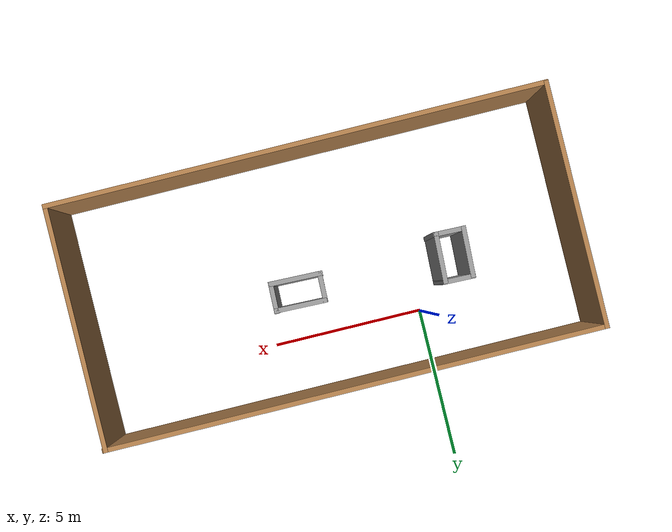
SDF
<?xml version='1.0'?>
<sdf version='1.6'>
  <model name='24_1_29_2'>
    <pose frame=''>2.75495 -2.14965 0 0 -0 0</pose>
    <link name='Wall_0'>
      <collision name='Wall_0_Collision'>
        <geometry>
          <box>
            <size>7.9468 0.15 2.5</size>
          </box>
        </geometry>
        <pose frame=''>0 0 1.25 0 -0 0</pose>
      </collision>
      <visual name='Wall_0_Visual'>
        <pose frame=''>0 0 1.25 0 -0 0</pose>
        <geometry>
          <box>
            <size>7.9468 0.15 2.5</size>
          </box>
        </geometry>
        <material>
          <script>
            <uri>file://media/materials/scripts/gazebo.material</uri>
            <name>Gazebo/Wood</name>
          </script>
          <ambient>1 1 1 1</ambient>
        </material>
        <meta>
          <layer>0</layer>
        </meta>
      </visual>
      <pose frame=''>-8.0353 -0.006836 0 0 -0 -1.56739</pose>
    </link>
    <link name='Wall_1'>
      <collision name='Wall_1_Collision'>
        <geometry>
          <box>
            <size>16.2206 0.15 2.5</size>
          </box>
        </geometry>
        <pose frame=''>0 0 1.25 0 -0 0</pose>
      </collision>
      <visual name='Wall_1_Visual'>
        <pose frame=''>0 0 1.25 0 -0 0</pose>
        <geometry>
          <box>
            <size>16.2206 0.15 2.5</size>
          </box>
        </geometry>
        <material>
          <script>
            <uri>file://media/materials/scripts/gazebo.material</uri>
            <name>Gazebo/Wood</name>
          </script>
          <ambient>1 1 1 1</ambient>
        </material>
        <meta>
          <layer>0</layer>
        </meta>
      </visual>
      <pose frame=''>0.0133 -3.91172 0 0 -0 0.002503</pose>
    </link>
    <link name='Wall_10'>
      <collision name='Wall_10_Collision'>
        <geometry>
          <box>
            <size>1.00024 0.15 2.5</size>
          </box>
        </geometry>
        <pose frame=''>0 0 1.25 0 -0 0</pose>
      </collision>
      <visual name='Wall_10_Visual'>
        <pose frame=''>0 0 1.25 0 -0 0</pose>
        <geometry>
          <box>
            <size>1.00024 0.15 2.5</size>
          </box>
        </geometry>
        <material>
          <script>
            <uri>file://media/materials/scripts/gazebo.material</uri>
            <name>Gazebo/Grey</name>
          </script>
          <ambient>1 1 1 1</ambient>
        </material>
        <meta>
          <layer>0</layer>
        </meta>
      </visual>
      <pose frame=''>0.254084 0.59681 0 0 -0 -1.59445</pose>
    </link>
    <link name='Wall_11'>
      <collision name='Wall_11_Collision'>
        <geometry>
          <box>
            <size>1.72756 0.15 2.5</size>
          </box>
        </geometry>
        <pose frame=''>0 0 1.25 0 -0 0</pose>
      </collision>
      <visual name='Wall_11_Visual'>
        <pose frame=''>0 0 1.25 0 -0 0</pose>
        <geometry>
          <box>
            <size>1.72756 0.15 2.5</size>
          </box>
        </geometry>
        <material>
          <script>
            <uri>file://media/materials/scripts/gazebo.material</uri>
            <name>Gazebo/Grey</name>
          </script>
          <ambient>1 1 1 1</ambient>
        </material>
        <meta>
          <layer>0</layer>
        </meta>
      </visual>
      <pose frame=''>1.01244 0.151696 0 0 -0 -0.025502</pose>
    </link>
    <link name='Wall_12'>
      <collision name='Wall_12_Collision'>
        <geometry>
          <box>
            <size>1.00024 0.15 2.5</size>
          </box>
        </geometry>
        <pose frame=''>0 0 1.25 0 -0 0</pose>
      </collision>
      <visual name='Wall_12_Visual'>
        <pose frame=''>0 0 1.25 0 -0 0</pose>
        <geometry>
          <box>
            <size>1.00024 0.15 2.5</size>
          </box>
        </geometry>
        <material>
          <script>
            <uri>file://media/materials/scripts/gazebo.material</uri>
            <name>Gazebo/Grey</name>
          </script>
          <ambient>1 1 1 1</ambient>
        </material>
        <meta>
          <layer>0</layer>
        </meta>
      </visual>
      <pose frame=''>1.81102 0.576696 0 0 -0 1.54714</pose>
    </link>
    <link name='Wall_13'>
      <collision name='Wall_13_Collision'>
        <geometry>
          <box>
            <size>1.68735 0.15 2.5</size>
          </box>
        </geometry>
        <pose frame=''>0 0 1.25 0 -0 0</pose>
      </collision>
      <visual name='Wall_13_Visual'>
        <pose frame=''>0 0 1.25 0 -0 0</pose>
        <geometry>
          <box>
            <size>1.68735 0.15 2.5</size>
          </box>
        </geometry>
        <material>
          <script>
            <uri>file://media/materials/scripts/gazebo.material</uri>
            <name>Gazebo/Grey</name>
          </script>
          <ambient>1 1 1 1</ambient>
        </material>
        <meta>
          <layer>0</layer>
        </meta>
      </visual>
      <pose frame=''>1.05266 1.0017 0 0 -0 3.11542</pose>
    </link>
    <link name='Wall_2'>
      <collision name='Wall_2_Collision'>
        <geometry>
          <box>
            <size>7.95329 0.15 2.5</size>
          </box>
        </geometry>
        <pose frame=''>0 0 1.25 0 -0 0</pose>
      </collision>
      <visual name='Wall_2_Visual'>
        <pose frame=''>0 0 1.25 0 -0 0</pose>
        <geometry>
          <box>
            <size>7.95329 0.15 2.5</size>
          </box>
        </geometry>
        <material>
          <script>
            <uri>file://media/materials/scripts/gazebo.material</uri>
            <name>Gazebo/Wood</name>
          </script>
          <ambient>1 1 1 1</ambient>
        </material>
        <meta>
          <layer>0</layer>
        </meta>
      </visual>
      <pose frame=''>8.0353 0.030148 0 0 -0 1.57421</pose>
    </link>
    <link name='Wall_3'>
      <collision name='Wall_3_Collision'>
        <geometry>
          <box>
            <size>16.2206 0.15 2.5</size>
          </box>
        </geometry>
        <pose frame=''>0 0 1.25 0 -0 0</pose>
      </collision>
      <visual name='Wall_3_Visual'>
        <pose frame=''>0 0 1.25 0 -0 0</pose>
        <geometry>
          <box>
            <size>16.2206 0.15 2.5</size>
          </box>
        </geometry>
        <material>
          <script>
            <uri>file://media/materials/scripts/gazebo.material</uri>
            <name>Gazebo/Wood</name>
          </script>
          <ambient>1 1 1 1</ambient>
        </material>
        <meta>
          <layer>0</layer>
        </meta>
      </visual>
      <pose frame=''>0.0133 3.91168 0 0 -0 -3.13909</pose>
    </link>
    <link name='Wall_5'>
      <collision name='Wall_5_Collision'>
        <geometry>
          <box>
            <size>1.64202 0.15 2.5</size>
          </box>
        </geometry>
        <pose frame=''>0 0 1.25 0 -0 0</pose>
      </collision>
      <visual name='Wall_5_Visual'>
        <pose frame=''>0 0 1.25 0 -0 0</pose>
        <geometry>
          <box>
            <size>1.64202 0.15 2.5</size>
          </box>
        </geometry>
        <material>
          <script>
            <uri>file://media/materials/scripts/gazebo.material</uri>
            <name>Gazebo/Grey</name>
          </script>
          <ambient>1 1 1 1</ambient>
        </material>
        <meta>
          <layer>0</layer>
        </meta>
      </visual>
      <pose frame=''>-4.41226 0.618343 0 0 -0 -1.61125</pose>
    </link>
    <link name='Wall_6'>
      <collision name='Wall_6_Collision'>
        <geometry>
          <box>
            <size>1.02898 0.15 2.5</size>
          </box>
        </geometry>
        <pose frame=''>0 0 1.25 0 -0 0</pose>
      </collision>
      <visual name='Wall_6_Visual'>
        <pose frame=''>0 0 1.25 0 -0 0</pose>
        <geometry>
          <box>
            <size>1.02898 0.15 2.5</size>
          </box>
        </geometry>
        <material>
          <script>
            <uri>file://media/materials/scripts/gazebo.material</uri>
            <name>Gazebo/Grey</name>
          </script>
          <ambient>1 1 1 1</ambient>
        </material>
        <meta>
          <layer>0</layer>
        </meta>
      </visual>
      <pose frame=''>-3.98295 -0.137111 0 0 -0 -0.022885</pose>
    </link>
    <link name='Wall_7'>
      <collision name='Wall_7_Collision'>
        <geometry>
          <box>
            <size>1.64202 0.15 2.5</size>
          </box>
        </geometry>
        <pose frame=''>0 0 1.25 0 -0 0</pose>
      </collision>
      <visual name='Wall_7_Visual'>
        <pose frame=''>0 0 1.25 0 -0 0</pose>
        <geometry>
          <box>
            <size>1.64202 0.15 2.5</size>
          </box>
        </geometry>
        <material>
          <script>
            <uri>file://media/materials/scripts/gazebo.material</uri>
            <name>Gazebo/Grey</name>
          </script>
          <ambient>1 1 1 1</ambient>
        </material>
        <meta>
          <layer>0</layer>
        </meta>
      </visual>
      <pose frame=''>-3.53351 0.598229 0 0 -0 1.53034</pose>
    </link>
    <link name='Wall_8'>
      <collision name='Wall_8_Collision'>
        <geometry>
          <box>
            <size>1.02898 0.15 2.5</size>
          </box>
        </geometry>
        <pose frame=''>0 0 1.25 0 -0 0</pose>
      </collision>
      <visual name='Wall_8_Visual'>
        <pose frame=''>0 0 1.25 0 -0 0</pose>
        <geometry>
          <box>
            <size>1.02898 0.15 2.5</size>
          </box>
        </geometry>
        <material>
          <script>
            <uri>file://media/materials/scripts/gazebo.material</uri>
            <name>Gazebo/Grey</name>
          </script>
          <ambient>1 1 1 1</ambient>
        </material>
        <meta>
          <layer>0</layer>
        </meta>
      </visual>
      <pose frame=''>-3.94272 1.3738 0 0 -0 3.11871</pose>
    </link>
    <static>1</static>
  </model>
</sdf>
